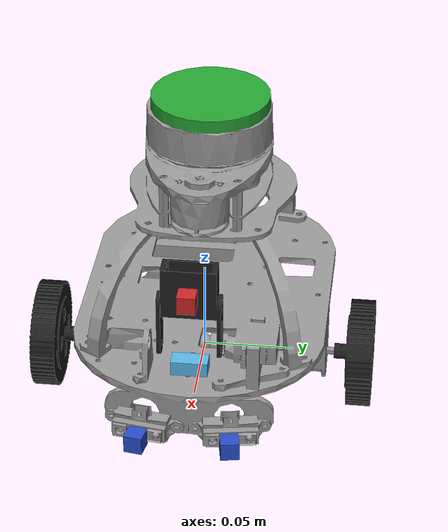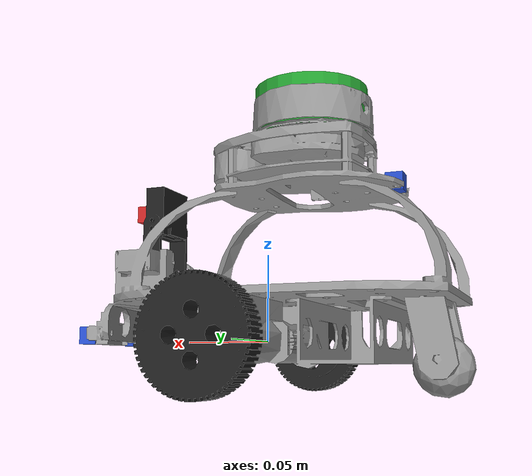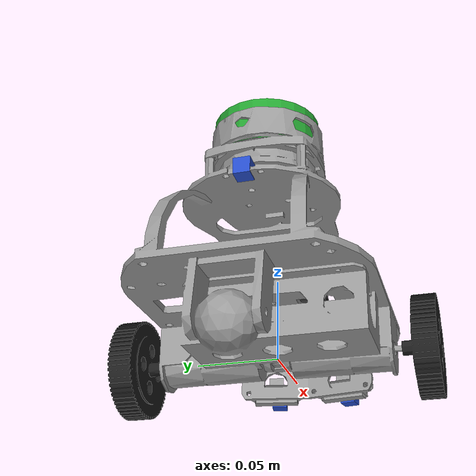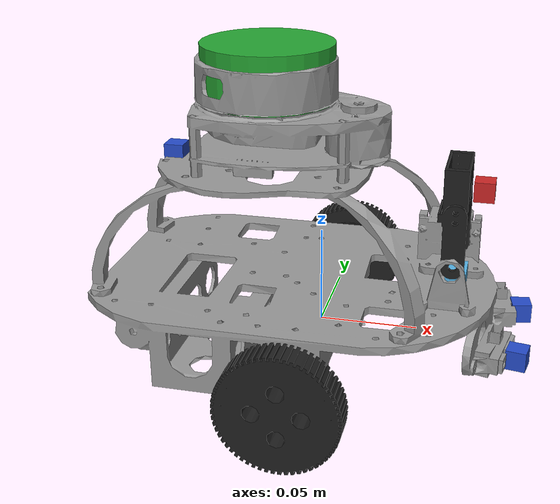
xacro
<?xml version="1.0" ?>
<robot name="niubot" xmlns:xacro="http://ros.org/wiki/xacro">
  <xacro:include filename="$(find niubot_description)/urdf/common_properties.xacro"/>
  <xacro:include filename="$(find niubot_description)/urdf/niubot.gazebo.xacro"/>

  <link name="base_footprint" >
    <visual>
      <origin rpy="0 0 0" xyz="0 0 0"/>
      <geometry>
        <sphere radius="0.005"/>
      </geometry>
    </visual>
  </link>

  <joint name="base_footprint_joint" type="fixed">
    <origin rpy="0 0 0" xyz="0 0 0"/>
    <parent link="base_footprint"/>
    <child link="base_link"/>
  </joint>

  <!-- BASE-LINK -->
  <!--Actual body/chassis of the robot-->
  <link name="base_link">
    <visual>
      <origin rpy="0 0 0" xyz="0 0 0"/>
      <geometry>
        <mesh filename="package://niubot_description/meshes/niubot_body.stl"/>
      </geometry>
    </visual>
    <collision>
      <origin rpy="0 0 0 " xyz="0 0 0"/>
      <geometry>
        <box size="0.21 0.178 0.03"/>
      </geometry>
    </collision>
    <inertial>
      <mass value="4.4"/>
      <inertia ixx="0.001" ixy="0.0" ixz="0.0" iyy="0.01" iyz="0.0" izz="0.001"/>
    </inertial>
  </link>

<!-- LEFT WHEEL -->
  <joint name="wheel_right_joint" type="continuous">
    <parent link="base_link"/>
    <child link="wheel_right_link"/>
    <origin rpy="0 0 3.1415926" xyz="0 0 0"/>
    <axis rpy="0 0 0" xyz="0 1 0"/>
    <limit effort="30" velocity="1.0" lower="-2.2" upper="0.7" />
    <safety_controller k_velocity="10" k_position="15" soft_lower_limit="-2.0" soft_upper_limit="0.5" />
  </joint>

  <transmission name="right_wheel_joint_trans">
    <type>transmission_interface/SimpleTransmission</type>
    <joint name="right_wheel_joint" />
    <actuator name="right_wheel_joint_motor">
      <hardwareInterface>EffortJointInterface</hardwareInterface>
      <mechanicalReduction>1</mechanicalReduction>
    </actuator>
  </transmission>

  <link name="wheel_right_link">
    <visual>
      <origin rpy="0 0 0" xyz="0 0 0"/>
      <geometry>
        <mesh filename="package://niubot_description/meshes/niubot_wheel.stl"/>
      </geometry>
    </visual>
    <collision>
      <origin rpy="0 0 0 " xyz="0 0 0"/>
      <geometry>
        <cylinder length="0.02" radius="0.03"/>
      </geometry>
    </collision>
    <inertial>
      <mass value="0.2"/>
      <origin xyz="0 0 0"/>
      <!--The 3x3 rotational inertia matrix. -->
      <inertia ixx="0.0082916666667" ixy="0" ixz="0" iyy="0.00282916666667" iyz="0" izz="0.005625"/>
    </inertial>
  </link>

<!-- LEFT WHEEL -->
  <joint name="wheel_left_joint" type="continuous">
    <parent link="base_link"/>
    <child link="wheel_left_link"/>
    <origin rpy="0 0 0" xyz="0 0 0"/>
    <axis rpy="0 0 0" xyz="0 0 1"/>
    <limit effort="30" velocity="1.0" lower="-2.2" upper="0.7" />
    <safety_controller k_velocity="10" k_position="15" soft_lower_limit="-2.0" soft_upper_limit="0.5" />
  </joint>

    <transmission name="left_wheel_joint_trans">
      <type>transmission_interface/SimpleTransmission</type>
      <joint name="left_wheel_joint" />
      <actuator name="left_wheel_joint_motor">
        <hardwareInterface>EffortJointInterface</hardwareInterface>
        <mechanicalReduction>1</mechanicalReduction>
      </actuator>
    </transmission>

  <link name="wheel_left_link">
    <visual>
      <origin rpy="0 0 0" xyz="0 0 0"/>
      <geometry>
        <mesh filename="package://niubot_description/meshes/niubot_wheel.stl"/>
      </geometry>
    </visual>
    <collision>
      <origin rpy="0 0 0 " xyz="0 0 0"/>
      <geometry>
        <cylinder length="0.02" radius="0.03"/>
      </geometry>
    </collision>
    <inertial>
      <mass value="0.2"/>
      <origin xyz="0 0 0"/>
      <!--The 3x3 rotational inertia matrix. -->
      <inertia ixx="0.0082916666667" ixy="0" ixz="0" iyy="0.00282916666667" iyz="0" izz="0.005625"/>
    </inertial>
  </link>

  <!-- SERVO_CAMERA -->

  <joint name="servo_camera_joint" type="continuous">
    <parent link="base_link"/>
    <child link="servo_camera_link"/>
    <origin rpy="0 0 0" xyz="0 0 0"/>
    <axis rpy="0 0 0" xyz="0 1 0"/>
    <limit effort="30" velocity="1.0" lower="-2.2" upper="0.7" />
    <safety_controller k_velocity="10" k_position="15" soft_lower_limit="-2.0" soft_upper_limit="0.5" />
  </joint>

  <!-- Transmission is important to link the joints and the controller -->
    <transmission name="servo_camera_joint_trans">
      <type>transmission_interface/SimpleTransmission</type>
      <joint name="servo_camera_joint" />
      <actuator name="servo_camera_joint_motor">
        <hardwareInterface>EffortJointInterface</hardwareInterface>
        <mechanicalReduction>1</mechanicalReduction>
      </actuator>
    </transmission>

  <link name="servo_camera_link">
    <visual>
      <origin rpy="0 0 0" xyz="0.068 0 0.044"/>
      <geometry>
        <mesh filename="package://niubot_description/meshes/niubot_camera.stl"/>
      </geometry>
    </visual>
    <collision>
      <origin rpy="0 0 0 " xyz="0.068 0 0.044"/>
      <geometry>
        <cylinder length="0.02" radius="0.03"/>
      </geometry>
    </collision>
    <inertial>
      <mass value="0.2"/>
      <origin xyz="0 0 0"/>
      <!--The 3x3 rotational inertia matrix. -->
      <inertia ixx="0.0082916666667" ixy="0" ixz="0" iyy="0.00282916666667" iyz="0" izz="0.005625"/>
    </inertial>
  </link>

  <!-- CAMERA -->
  <joint name="camera_joint" type="fixed">
    <origin rpy="0 0 0" xyz="0.08 0 0.079"/>
    <parent link="servo_camera_link"/>
    <child link="camera_link"/>
  </joint>

  <link name="camera_link">
    <collision>
      <origin rpy="0 0 0" xyz="0 0 0"/>
      <geometry>
        <box size="0.01 0.01 0.01"/>
      </geometry>
    </collision>
    <visual>
      <origin rpy="0 0 0" xyz="0 0 0"/>
      <geometry>
        <box size="0.01 0.01 0.01"/>
      </geometry>
    </visual>
  </link>

  <!-- CEIL LASER -->
  <joint name="ceil_joint" type="fixed">
    <axis xyz="0 1 0"/>
    <origin rpy="0 -1.57079 0" xyz="-0.0759 0 0.0867"/>
    <parent link="base_link"/>
    <child link="ceil_link"/>
  </joint>

  <link name="ceil_link">
    <collision>
      <origin rpy="0 0 0" xyz="0 0 0"/>
      <geometry>
        <box size="0.01 0.01 0.01"/>
      </geometry>
    </collision>
    <visual>
      <origin rpy="0 0 0" xyz="0 0 0"/>
      <geometry>
        <box size="0.01 0.01 0.01"/>
      </geometry>
    </visual>
    <inertial>
      <mass value="1e-5"/>
      <origin rpy="0 0 0" xyz="0 0 0"/>
      <inertia ixx="1e-6" ixy="0" ixz="0" iyy="1e-6" iyz="0" izz="1e-6"/>
    </inertial>
  </link>

  <!-- SHARP IR_L -->
  <joint name="ir_l_joint" type="fixed">
    <axis xyz="0 1 0"/>
    <origin rpy="0 0 0.174533" xyz="0.102 0.025 0.004"/>
    <parent link="base_link"/>
    <child link="ir_l_link"/>
  </joint>

  <link name="ir_l_link">
    <collision>
      <origin rpy="0 0 0" xyz="0 0 0"/>
      <geometry>
        <box size="0.01 0.01 0.01"/>
      </geometry>
    </collision>
    <visual>
      <origin rpy="0 0 0" xyz="0 0 0"/>
      <geometry>
        <box size="0.01 0.01 0.01"/>
      </geometry>
    </visual>
    <inertial>
      <mass value="1e-5"/>
      <origin rpy="0 0 0" xyz="0 0 0"/>
      <inertia ixx="1e-6" ixy="0" ixz="0" iyy="1e-6" iyz="0" izz="1e-6"/>
    </inertial>
  </link>

  <!-- SHARP IR_R -->
  <joint name="ir_r_joint" type="fixed">
    <axis xyz="0 1 0"/>
    <origin rpy="0 0 -0.174533" xyz="0.102 -0.025 0.004"/>
    <parent link="base_link"/>
    <child link="ir_r_link"/>
  </joint>

  <link name="ir_r_link">
    <collision>
      <origin rpy="0 0 0" xyz="0 0 0"/>
      <geometry>
        <box size="0.01 0.01 0.01"/>
      </geometry>
    </collision>
    <visual>
      <origin rpy="0 0 0" xyz="0 0 0"/>
      <geometry>
        <box size="0.01 0.01 0.01"/>
      </geometry>
    </visual>
    <inertial>
      <mass value="1e-5"/>
      <origin rpy="0 0 0" xyz="0 0 0"/>
      <inertia ixx="1e-6" ixy="0" ixz="0" iyy="1e-6" iyz="0" izz="1e-6"/>
    </inertial>
  </link>

  <!-- IMU -->
  <joint name="imu_joint" type="fixed">
    <origin rpy="0 0 0" xyz="0.069 0 0.032"/>
    <parent link="base_link"/>
    <child link="imu_link"/>
  </joint>

  <link name="imu_link">
    <visual>
      <origin rpy="0 0 0" xyz="0 0 0"/>
      <geometry>
        <box size="0.01 0.02 0.008"/>
      </geometry>
    </visual>
    </link>

 <!-- LIDAR -->
  <joint name="scan_joint" type="fixed">
    <parent link="base_link"/>
    <child link="base_scan"/>
    <origin xyz="-0.027 0 0.131401" rpy="0 0 0"/>
  </joint>

  <link name="base_scan">
    <visual>
      <origin xyz="0 0 0" rpy="0 0 0"/>
      <geometry>
        <cylinder length="0.028" radius="0.033"/>
      </geometry>
    </visual>
    <collision>
      <origin xyz="0 0 0" rpy="0 0 0"/>
      <geometry>
        <cylinder length="0.028" radius="0.033"/>
      </geometry>
    </collision>
    <inertial>
      <mass value="0.114" />
      <origin xyz="0 0 0" />
      <inertia ixx="0.001" ixy="0.0" ixz="0.0"
               iyy="0.001" iyz="0.0"
               izz="0.001" />
    </inertial>
  </link>

</robot>

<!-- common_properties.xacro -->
<robot name="xacro_properties" xmlns:xacro="http://ros.org/wiki/xacro">

  <!-- Init colour -->
  <material name="black">
      <color rgba="0.0 0.0 0.0 1.0"/>
  </material>

  <material name="dark">
    <color rgba="0.3 0.3 0.3 1.0"/>
  </material>

  <material name="light_black">
    <color rgba="0.4 0.4 0.4 1.0"/>
  </material>

  <material name="blue">
    <color rgba="0.0 0.0 0.8 1.0"/>
  </material>

  <material name="green">
    <color rgba="0.0 0.8 0.0 1.0"/>
  </material>

  <material name="grey">
    <color rgba="0.5 0.5 0.5 1.0"/>
  </material>

  <material name="red">
    <color rgba="0.8 0.0 0.0 1.0"/>
  </material>

  <material name="white">
    <color rgba="1.0 1.0 1.0 1.0"/>
  </material>
</robot>
